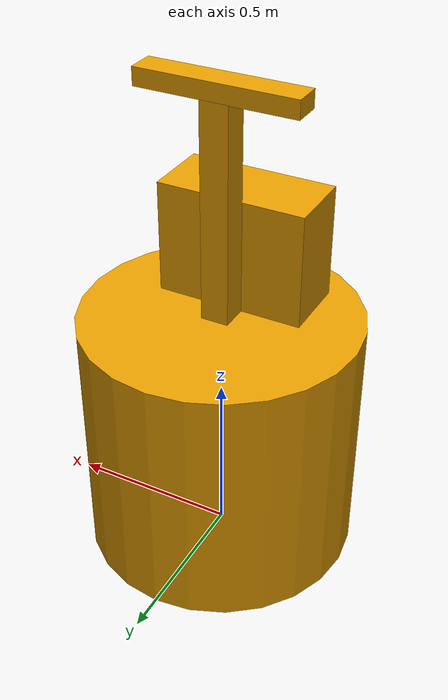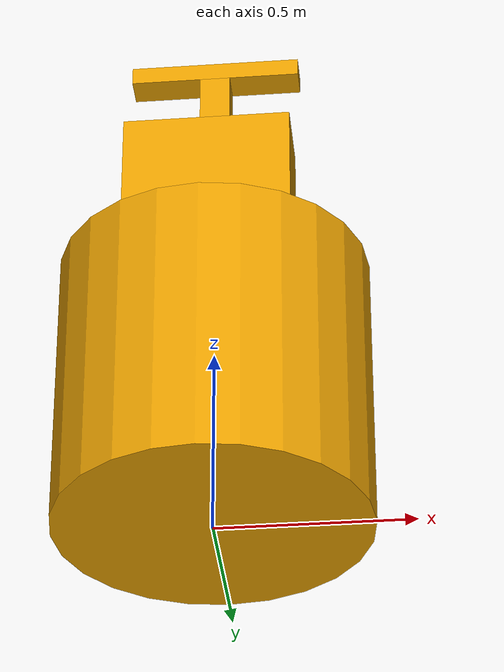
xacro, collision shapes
<?xml version="1.0"?>

<robot xmlns:xacro="http://wiki.ros.org/xacro" name="madar_platform">

    <xacro:arg name="bmm_description_path" default="./../../robot_descriptions/bmm"/>
    <xacro:include filename="$(arg bmm_description_path)/bmm3_platform_macro.xacro" />

    <xacro:bmm3_robot
        prefix="madar_"
        >
    </xacro:bmm3_robot>

</robot>

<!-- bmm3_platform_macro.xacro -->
<robot xmlns:xacro="http://wiki.ros.org/xacro">

    <xacro:arg name="bmm3_robot_meshes" default="./../../robot_descriptions/bmm"/>

    <xacro:macro name="bmm3_robot" params="prefix">

        <link name="${prefix}base_link">
            <visual>
                <geometry>
                    <mesh filename="$(arg bmm3_robot_meshes)/meshes/estructura_asm.dae"/>
                </geometry>
            </visual>
            <!-- PLATFORM: -->
            <collision>
                <origin xyz="0 0 0.375"/>
                <geometry>
                    <cylinder radius="0.4" length="0.75"/>
                </geometry>
            </collision>
            <!-- HORIZONTAL T: -->
            <collision>
                <origin xyz="0 0 1.395"/>
                <geometry>
                    <box size="0.45 0.08 0.05"/>
                </geometry>
            </collision>
            <!-- VERTICAL T: -->
            <collision>
                <origin xyz="0 0 1.056"/>
                <geometry>
                    <box size="0.08 0.08 0.63"/>
                </geometry>
            </collision>
            <!-- PC BOX: -->
            <collision>
                <origin xyz="0 -0.14 0.916"/>
                <geometry>
                    <box size="0.43 0.2 0.33"/>
                </geometry>
            </collision>
        </link>

        <joint name="motor_1" type="continuous">
            <parent link="${prefix}base_link"/>
            <child link="wheel_1_link"/>
            <axis xyz="-1 0 0"/>
            <origin rpy="2.0944 0 1.5708" xyz="0 -0.2905 0.1"/>
        </joint>

        <link name="wheel_1_link">
            <visual>
                <geometry>
                    <mesh filename="$(arg bmm3_robot_meshes)/meshes/wheel.dae"/>
                </geometry>
            </visual>
            <collision>
                <geometry>
                    <sphere radius="0.10"/>
                </geometry>
            </collision>
            <inertial>
                <mass value="10"/>
                <inertia ixx="0.04" ixy="0" ixz="0" iyy="0.04" iyz="0" izz="0.04"/> <!-- Provisional inertia values -->
            </inertial>
        </link>

        <joint name="motor_2" type="continuous">
            <parent link="${prefix}base_link"/>
            <child link="wheel_2_link"/>
            <axis xyz="-1 0 0"/>
            <origin rpy="0 0 3.66519" xyz="0.25158 0.14525 0.1"/>
        </joint>

        <link name="wheel_2_link">
            <visual>
                <geometry>
                    <mesh filename="$(arg bmm3_robot_meshes)/meshes/wheel.dae"/>
                </geometry>
            </visual>
            <collision>
                <geometry>
                    <sphere radius="0.10"/>
                </geometry>
            </collision>
            <inertial>
                <mass value="10"/>
                <inertia ixx="0.04" ixy="0" ixz="0" iyy="0.04" iyz="0" izz="0.04"/>
            </inertial>
        </link>

        <joint name="motor_3" type="continuous">
            <parent link="${prefix}base_link"/>
            <child link="wheel_3_link"/>
            <axis xyz="-1 0 0"/>
            <origin rpy="0 0 5.75959" xyz="-0.25158 0.14525 0.1"/>
        </joint>

        <link name="wheel_3_link">
            <visual>
                <geometry>
                    <mesh filename="$(arg bmm3_robot_meshes)/meshes/wheel.dae"/>
                </geometry>
            </visual>
            <collision>
                <geometry>
                    <sphere radius="0.10"/>
                </geometry>
            </collision>
            <inertial>
                <mass value="10"/>
                <inertia ixx="0.04" ixy="0" ixz="0" iyy="0.04" iyz="0" izz="0.04"/>
            </inertial>
        </link>

  </xacro:macro>

</robot>
